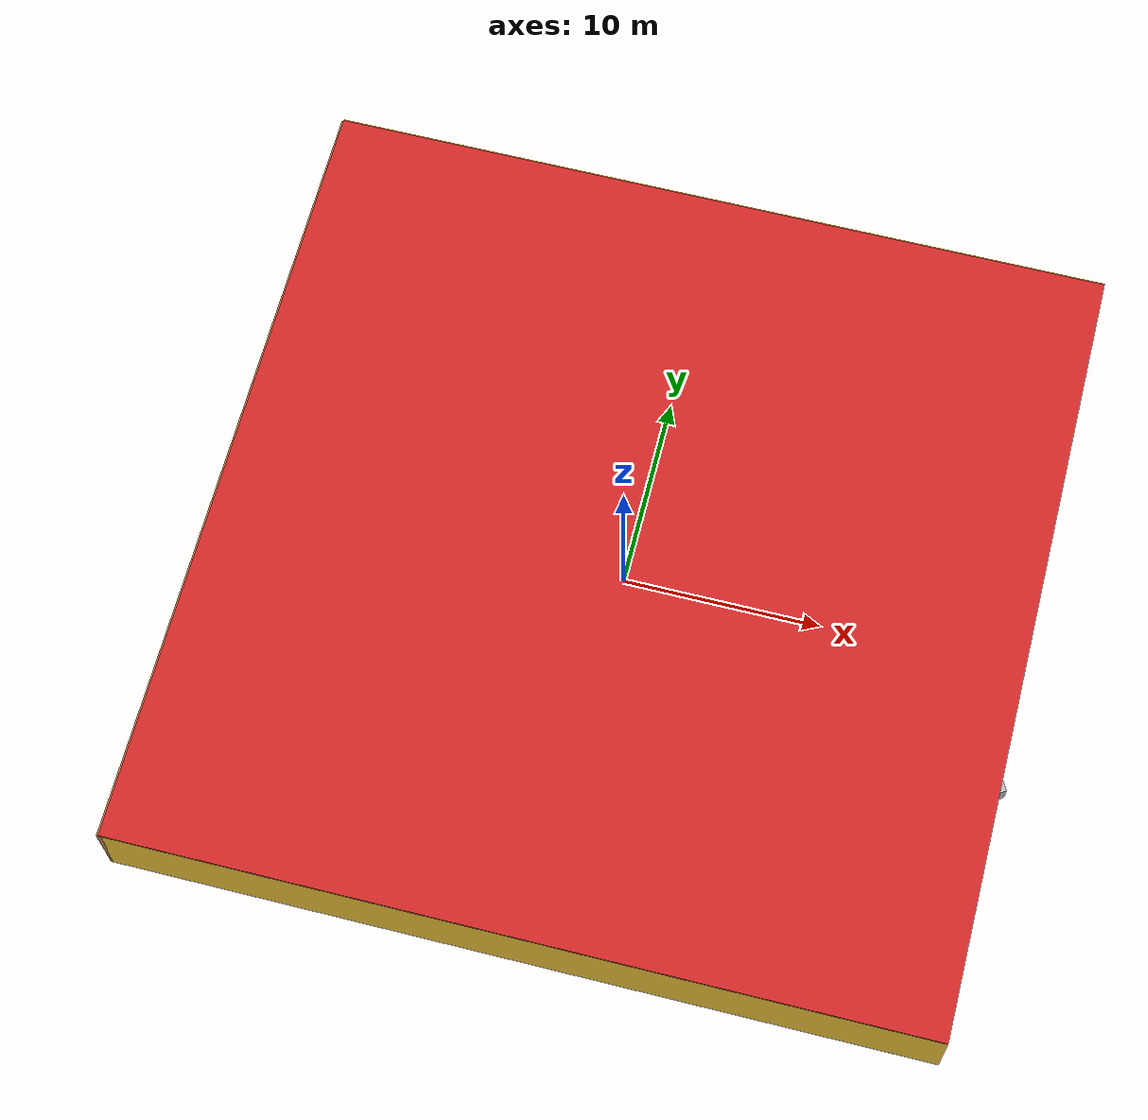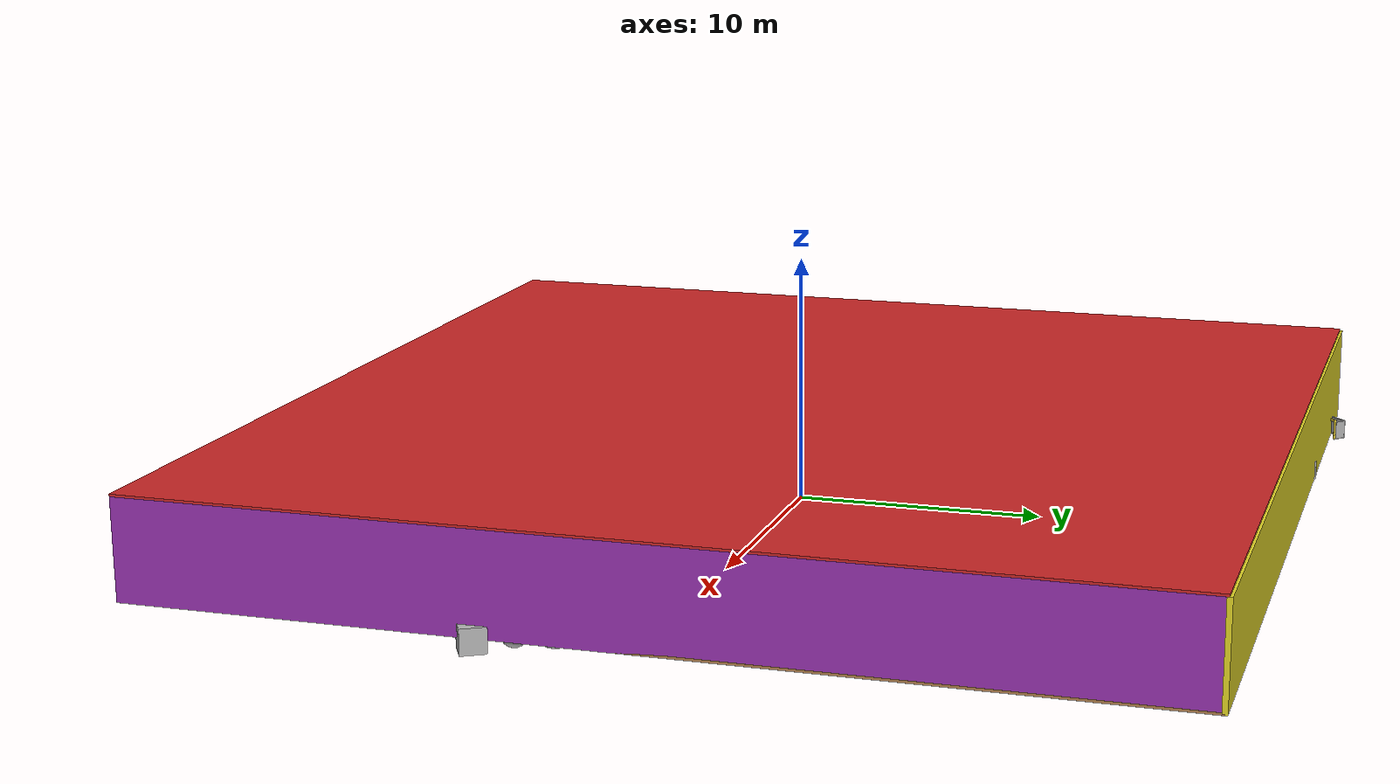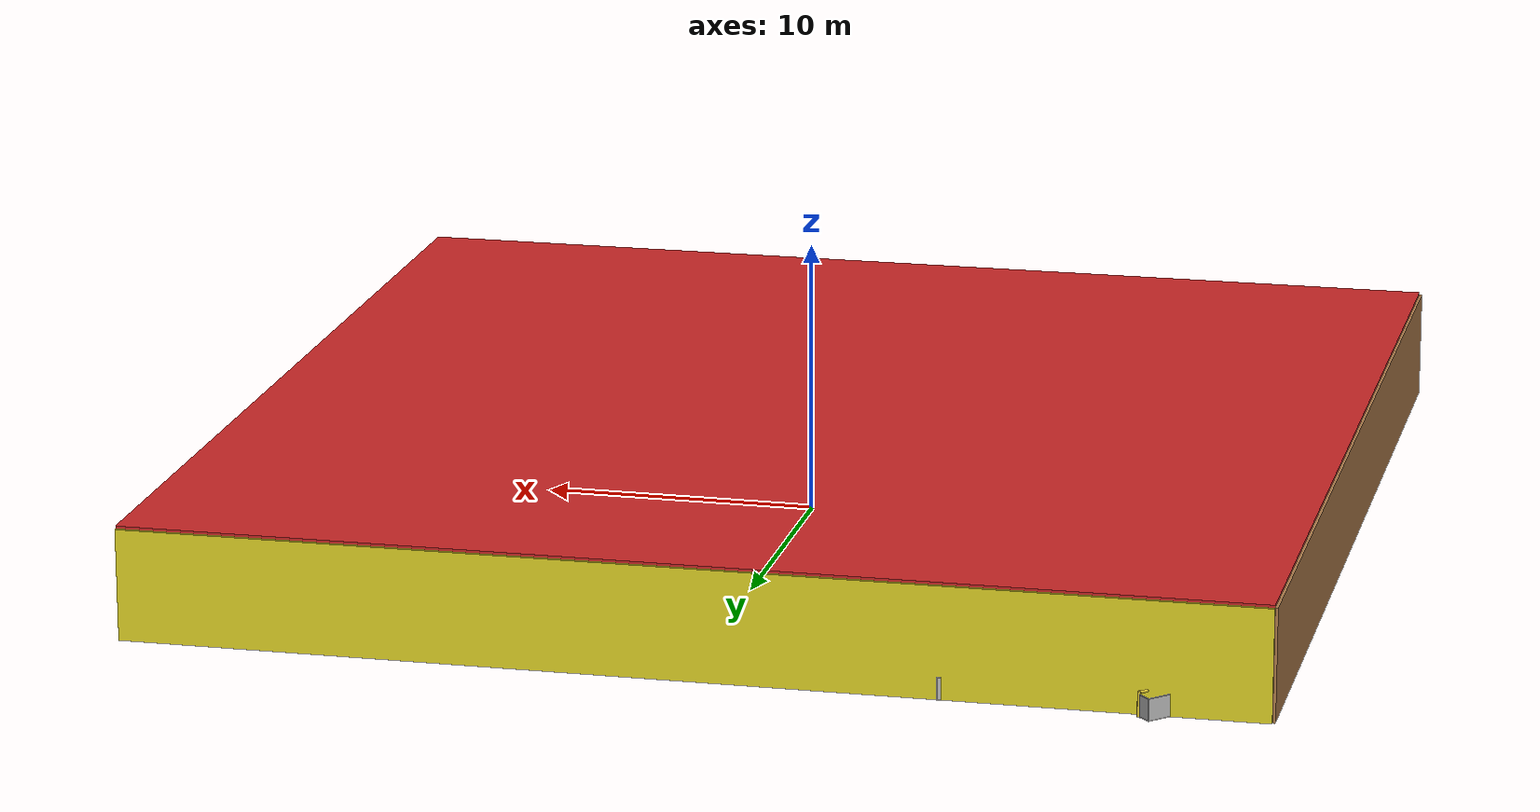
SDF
<sdf version="1.4">
 <world name="default">
  <physics type="ode">
   <max_step_size>0.001</max_step_size>
   <real_time_factor>1</real_time_factor>
   <real_time_update_rate>1000</real_time_update_rate>
   <gravity>0 0 -9.8</gravity>
  </physics>
  <scene><ambient>0.4 0.4 0.4 1</ambient><background>0.7 0.7 0.7 1</background><shadows>1</shadows></scene>
  <model name="Surrounding">
   <static>1</static>
   <link name="Ceiling">
    <collision name="Ceiling_Collision"><geometry><box><size>40 40 0.1</size></box></geometry></collision>
    <visual name="Ceiling_Visual">
     <geometry><box><size>40 40 0.1</size></box></geometry>
     <material>
      <script><uri>file://media/materials/scripts/gazebo.material</uri><name>Gazebo/Red</name></script>
     </material>
    </visual>
    <pose>0 0 4.05 0 0 0</pose>
   </link>
   <link name="Wall_South">
    <collision name="Wall_South_Collision">
     <geometry><box><size>40 0 4</size></box></geometry>
     <pose>0 0 2 0 -0 0</pose>
    </collision>
    <visual name="Wall_South_Visual">
     <pose>0 0 2 0 -0 0</pose>
     <geometry><box><size>40 0 4</size></box></geometry>
     <material>
      <script><uri>file://media/materials/scripts/gazebo.material</uri><name>Gazebo/Gold</name></script>
     </material>
    </visual>
    <velocity_decay><linear>0</linear><angular>0</angular></velocity_decay>
    <pose>0 -20 0 0 -0 0</pose>
   </link>
   <link name="Wall_East">
    <collision name="Wall_21_Collision">
     <geometry><box><size>40 0 4</size></box></geometry>
     <pose>0 0 2 0 -0 0</pose>
    </collision>
    <visual name="Wall_21_Visual">
     <pose>0 0 2 0 -0 0</pose>
     <geometry><box><size>40 0 4</size></box></geometry>
     <material>
      <script><uri>file://media/materials/scripts/gazebo.material</uri><name>Gazebo/PurpleGlow</name></script>
     </material>
    </visual>
    <velocity_decay><linear>0</linear><angular>0</angular></velocity_decay>
    <pose>20 0 0 0 -0 1.5708</pose>
   </link>
   <link name="Wall_North">
    <collision name="Wall_22_Collision">
     <geometry><box><size>40 0.2 4</size></box></geometry>
     <pose>0 0 2 0 -0 0</pose>
    </collision>
    <visual name="Wall_22_Visual">
     <pose>0 0 2 0 -0 0</pose>
     <geometry><box><size>40 0.2 4</size></box></geometry>
     <material>
      <script><uri>file://media/materials/scripts/gazebo.material</uri><name>Gazebo/YellowGlow</name></script>
     </material>
    </visual>
    <velocity_decay><linear>0</linear><angular>0</angular></velocity_decay>
    <pose>0 20 0 0 -0 0</pose>
   </link>
   <link name="Wall_West">
    <collision name="Wall_23_Collision">
     <geometry><box><size>40 0.2 4</size></box></geometry>
     <pose>0 0 2 0 -0 0</pose>
    </collision>
    <visual name="Wall_23_Visual">
     <pose>0 0 2 0 -0 0</pose>
     <geometry><box><size>40 0.2 4</size></box></geometry>
     <material>
      <script><uri>file://media/materials/scripts/gazebo.material</uri><name>Gazebo/Wood</name></script>
     </material>
    </visual>
    <velocity_decay><linear>0</linear><angular>0</angular></velocity_decay>
    <pose>-20 0 0 0 0 -1.5708</pose>
   </link>
   <link name="Ground_link">
    <collision name="collision">
     <pose>0 0 .05 0 -0 0</pose>
     <geometry><box><size>40 40 0.1</size></box></geometry>
    </collision>
    <visual name="visual">
     <pose>0 0 .05 0 -0 0</pose>
     <geometry><box><size>40 40 0.1</size></box></geometry>
     <material>
      <script><uri>file://media/materials/scripts/gazebo.material</uri><name>Gazebo/WoodPallet</name></script>
     </material>
    </visual>
   </link>
   <static>1</static>
  </model>
  <spherical_coordinates>
   <surface_model>EARTH_WGS84</surface_model>
   <latitude_deg>0</latitude_deg>
   <longitude_deg>0</longitude_deg>
   <elevation>0</elevation>
   <heading_deg>0</heading_deg>
  </spherical_coordinates>
  <light name="lightball_0" type="diffuse">
   <diffuse>0.8 0.8 0.8 1</diffuse>
   <specular>0.2 0.2 0.2 1</specular>
   <attenuation>
    <range>100</range>
    <constant>0.7</constant>
    <linear>0.01</linear>
    <quadratic>0.001</quadratic>
   </attenuation>
   <direction>-0.5 0.1 -0.9</direction>
   <pose>4.8426443701 -13.3532126608 2.39671307033 0 0 0</pose>
  </light>
  <light name="lightball_1" type="diffuse">
   <diffuse>0.8 0.8 0.8 1</diffuse>
   <specular>0.2 0.2 0.2 1</specular>
   <attenuation>
    <range>100</range>
    <constant>0.7</constant>
    <linear>0.01</linear>
    <quadratic>0.001</quadratic>
   </attenuation>
   <direction>-0.5 0.1 -0.9</direction>
   <pose>7.9949937265 19.4343741358 1.27264697948 0 0 0</pose>
  </light>
  <light name="lightball_2" type="diffuse">
   <diffuse>0.8 0.8 0.8 1</diffuse>
   <specular>0.2 0.2 0.2 1</specular>
   <attenuation>
    <range>100</range>
    <constant>0.7</constant>
    <linear>0.01</linear>
    <quadratic>0.001</quadratic>
   </attenuation>
   <direction>-0.5 0.1 -0.9</direction>
   <pose>2.4034907806 12.3019453166 1.60629786632 0 0 0</pose>
  </light>
  <light name="lightball_3" type="diffuse">
   <diffuse>0.8 0.8 0.8 1</diffuse>
   <specular>0.2 0.2 0.2 1</specular>
   <attenuation>
    <range>100</range>
    <constant>0.7</constant>
    <linear>0.01</linear>
    <quadratic>0.001</quadratic>
   </attenuation>
   <direction>-0.5 0.1 -0.9</direction>
   <pose>19.2205169106 -4.03759321718 1.56711295621 0 0 0</pose>
  </light>
  <light name="lightball_4" type="diffuse">
   <diffuse>0.8 0.8 0.8 1</diffuse>
   <specular>0.2 0.2 0.2 1</specular>
   <attenuation>
    <range>100</range>
    <constant>0.7</constant>
    <linear>0.01</linear>
    <quadratic>0.001</quadratic>
   </attenuation>
   <direction>-0.5 0.1 -0.9</direction>
   <pose>-2.75528991522 2.19881581413 2.77277678892 0 0 0</pose>
  </light>
  <light name="lightball_5" type="diffuse">
   <diffuse>0.8 0.8 0.8 1</diffuse>
   <specular>0.2 0.2 0.2 1</specular>
   <attenuation>
    <range>100</range>
    <constant>0.7</constant>
    <linear>0.01</linear>
    <quadratic>0.001</quadratic>
   </attenuation>
   <direction>-0.5 0.1 -0.9</direction>
   <pose>-12.3390879012 -5.90236628716 2.19144775749 0 0 0</pose>
  </light>
  <light name="lightball_6" type="diffuse">
   <diffuse>0.8 0.8 0.8 1</diffuse>
   <specular>0.2 0.2 0.2 1</specular>
   <attenuation>
    <range>100</range>
    <constant>0.7</constant>
    <linear>0.01</linear>
    <quadratic>0.001</quadratic>
   </attenuation>
   <direction>-0.5 0.1 -0.9</direction>
   <pose>18.3091150115 -17.3468017426 1.43627257739 0 0 0</pose>
  </light>
  <light name="lightball_7" type="diffuse">
   <diffuse>0.8 0.8 0.8 1</diffuse>
   <specular>0.2 0.2 0.2 1</specular>
   <attenuation>
    <range>100</range>
    <constant>0.7</constant>
    <linear>0.01</linear>
    <quadratic>0.001</quadratic>
   </attenuation>
   <direction>-0.5 0.1 -0.9</direction>
   <pose>-4.91683927514 1.55892384629 1.7929376106 0 0 0</pose>
  </light>
  <light name="lightball_8" type="diffuse">
   <diffuse>0.8 0.8 0.8 1</diffuse>
   <specular>0.2 0.2 0.2 1</specular>
   <attenuation>
    <range>100</range>
    <constant>0.7</constant>
    <linear>0.01</linear>
    <quadratic>0.001</quadratic>
   </attenuation>
   <direction>-0.5 0.1 -0.9</direction>
   <pose>19.9580423137 -4.86258843478 2.35467146796 0 0 0</pose>
  </light>
  <light name="lightball_9" type="diffuse">
   <diffuse>0.8 0.8 0.8 1</diffuse>
   <specular>0.2 0.2 0.2 1</specular>
   <attenuation>
    <range>100</range>
    <constant>0.7</constant>
    <linear>0.01</linear>
    <quadratic>0.001</quadratic>
   </attenuation>
   <direction>-0.5 0.1 -0.9</direction>
   <pose>-15.6021774358 12.8344488428 1.71478594719 0 0 0</pose>
  </light>
  <light name="lightball_10" type="diffuse">
   <diffuse>0.8 0.8 0.8 1</diffuse>
   <specular>0.2 0.2 0.2 1</specular>
   <attenuation>
    <range>100</range>
    <constant>0.7</constant>
    <linear>0.01</linear>
    <quadratic>0.001</quadratic>
   </attenuation>
   <direction>-0.5 0.1 -0.9</direction>
   <pose>14.3708370861 -14.2233456189 2.06864544865 0 0 0</pose>
  </light>
  <light name="lightball_11" type="diffuse">
   <diffuse>0.8 0.8 0.8 1</diffuse>
   <specular>0.2 0.2 0.2 1</specular>
   <attenuation>
    <range>100</range>
    <constant>0.7</constant>
    <linear>0.01</linear>
    <quadratic>0.001</quadratic>
   </attenuation>
   <direction>-0.5 0.1 -0.9</direction>
   <pose>-10.9095480899 11.9353432573 1.82333679301 0 0 0</pose>
  </light>
  <include>
   <uri>model://construction_cone</uri>
   <pose>-18.3327547316 3.90227252013 0 0 0 2.40701461284</pose>
  </include>
  <include>
   <uri>model://robocup_3Dsim_goal</uri>
   <pose>-16.3078126229 19.5835465796 0 0 0 2.36521477735</pose>
  </include>
  <include><uri>model://cabinet</uri><pose>-14.9850301641 3.66600102405 0 0 0 3.13589231129</pose></include>
  <include><uri>model://cabinet</uri><pose>-15.0508293357 11.7235503525 0 0 0 2.48002726144</pose></include>
  <include><uri>model://table</uri><pose>-12.5321790162 -12.2764327211 0 0 0 2.91623629306</pose></include>
  <include>
   <uri>model://textured_shapes</uri>
   <pose>-11.129885525 -1.57264796208 0 0 0 0.111595255081</pose>
  </include>
  <include><uri>model://table</uri><pose>-11.4118684193 0.43166086223 0 0 0 1.42477989332</pose></include>
  <include><uri>model://table</uri><pose>-12.0497953865 6.75502959149 0 0 0 1.4146481826</pose></include>
  <include><uri>model://table</uri><pose>-10.717206148 14.9646727141 0 0 0 2.42501509928</pose></include>
  <include>
   <uri>model://robocup_3Dsim_goal</uri>
   <pose>-8.89900229738 -6.16245111612 0 0 0 0.286391393978</pose>
  </include>
  <include>
   <uri>model://robocup_3Dsim_goal</uri>
   <pose>-8.14240394972 -3.55003329344 0 0 0 1.15784203015</pose>
  </include>
  <include>
   <uri>model://robocup_3Dsim_goal</uri>
   <pose>-9.43326402817 19.2033798501 0 0 0 2.00497796908</pose>
  </include>
  <include><uri>model://cabinet</uri><pose>-5.1444267658 0.320853353114 0 0 0 1.18215100366</pose></include>
  <include>
   <uri>model://construction_cone</uri>
   <pose>-4.36805131395 3.10624798289 0 0 0 1.61090656893</pose>
  </include>
  <include>
   <uri>model://construction_cone</uri>
   <pose>1.48749515131 -1.88038340085 0 0 0 0.317670394554</pose>
  </include>
  <include>
   <uri>model://construction_cone</uri>
   <pose>3.78847640267 -8.77246296828 0 0 0 2.10203871286</pose>
  </include>
  <include><uri>model://cabinet</uri><pose>7.69386049159 19.3209121893 0 0 0 2.99113101312</pose></include>
  <include><uri>model://table</uri><pose>8.4513653633 -14.3863645091 0 0 0 1.82810861429</pose></include>
  <include>
   <uri>model://robocup_3Dsim_goal</uri>
   <pose>8.4890521089 2.41800781969 0 0 0 1.39045226215</pose>
  </include>
  <include><uri>model://cabinet</uri><pose>12.9281912486 -1.78773152075 0 0 0 1.29984476194</pose></include>
  <include>
   <uri>model://robocup_3Dsim_goal</uri>
   <pose>16.6070976899 2.49655574323 0 0 0 1.70287664347</pose>
  </include>
  <include><uri>model://cabinet</uri><pose>14.6666536459 8.84560313022 0 0 0 1.73812085448</pose></include>
  <include>
   <uri>model://robocup_3Dsim_goal</uri>
   <pose>16.6877005659 18.7973373015 0 0 0 2.89056826289</pose>
  </include>
  <include>
   <uri>model://textured_shapes</uri>
   <pose>19.0747390056 -4.85947260165 0 0 0 0.524836108632</pose>
  </include>
  <include>
   <uri>model://construction_cone</uri>
   <pose>18.4223248732 6.33300632401 0 0 0 3.05094294648</pose>
  </include>
 </world>
</sdf>

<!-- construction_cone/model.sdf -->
<sdf version="1.5">
  <model name="Construction Cone">
    <link name="link">
      <collision name="collision">
        <geometry>
          <mesh>
            <scale>10 10 10</scale>
            <uri>file://isr-testbed/construction_cone/meshes/construction_cone.dae</uri>
          </mesh>
        </geometry>
      </collision>
      <visual name="visual">
        <geometry>
          <mesh>
            <scale>10 10 10</scale>
            <uri>file://isr-testbed/construction_cone/meshes/construction_cone.dae</uri>
          </mesh>
        </geometry>
      </visual>
    </link>
  </model>
</sdf>

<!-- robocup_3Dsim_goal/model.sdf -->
<sdf version="1.5">
  <model name="robocup_3d_goal">
    <static>true</static>
    <link name="left_post">
      <pose>0 1.05 0.45 0 0 0</pose>
      <collision name="collision">
        <geometry>
          <cylinder>
            <radius>0.05</radius>
            <length>0.9</length>
          </cylinder>
        </geometry>
      </collision>
      <visual name="visual">
        <geometry>
          <cylinder>
            <radius>0.05</radius>
            <length>0.9</length>
          </cylinder>
        </geometry>
        <material>
          <script>
            <uri>file://media/materials/scripts/gazebo.material</uri>
            <name>Gazebo/ZincYellow</name>
          </script>
        </material>
      </visual>
    </link>
    <link name="left_support_horiz_lower">
      <pose>0.30 1.05 0.01 0 0 0</pose>
      <collision name="collision">
        <geometry>
          <box>
            <size>0.50 0.02 0.02</size>
          </box>
        </geometry>
      </collision>
      <visual name="visual">
        <geometry>
          <box>
            <size>0.50 0.02 0.02</size>
          </box>
        </geometry>
        <material>
          <script>
            <uri>file://media/materials/scripts/gazebo.material</uri>
            <name>Gazebo/White</name>
          </script>
        </material>
      </visual>
    </link>
    <link name="left_support_horiz_upper">
      <pose>0.30 1.05 0.79 0 0 0</pose>
      <collision name="collision">
        <geometry>
          <box>
            <size>0.50 0.02 0.02</size>
          </box>
        </geometry>
      </collision>
      <visual name="visual">
        <geometry>
          <box>
            <size>0.50 0.02 0.02</size>
          </box>
        </geometry>
        <material>
          <script>
            <uri>file://media/materials/scripts/gazebo.material</uri>
            <name>Gazebo/White</name>
          </script>
        </material>
      </visual>
    </link>
    <link name="left_support_vertical">
      <pose>0.56 1.05 0.4 0 1.5708 0</pose>
      <collision name="collision">
        <geometry>
          <box>
            <size>0.80 0.02 0.02</size>
          </box>
        </geometry>
      </collision>
      <visual name="visual">
        <geometry>
          <box>
            <size>0.80 0.02 0.02</size>
          </box>
        </geometry>
        <material>
          <script>
            <uri>file://media/materials/scripts/gazebo.material</uri>
            <name>Gazebo/White</name>
          </script>
        </material>
      </visual>
    </link>
    <link name="right_support_horiz_lower">
      <pose>0.30 -1.05 0.01 0 0 0</pose>
      <collision name="collision">
        <geometry>
          <box>
            <size>0.50 0.02 0.02</size>
          </box>
        </geometry>
      </collision>
      <visual name="visual">
        <geometry>
          <box>
            <size>0.50 0.02 0.02</size>
          </box>
        </geometry>
        <material>
          <script>
            <uri>file://media/materials/scripts/gazebo.material</uri>
            <name>Gazebo/White</name>
          </script>
        </material>
      </visual>
    </link>
    <link name="right_support_horiz_upper">
      <pose>0.30 -1.05 0.79 0 0 0</pose>
      <collision name="collision">
        <geometry>
          <box>
            <size>0.50 0.02 0.02</size>
          </box>
        </geometry>
      </collision>
      <visual name="visual">
        <geometry>
          <box>
            <size>0.50 0.02 0.02</size>
          </box>
        </geometry>
        <material>
          <script>
            <uri>file://media/materials/scripts/gazebo.material</uri>
            <name>Gazebo/White</name>
          </script>
        </material>
      </visual>
    </link>
    <link name="right_support_vertical">
      <pose>0.56 -1.05 0.4 0 1.5708 0</pose>
      <collision name="collision">
        <geometry>
          <box>
            <size>0.80 0.02 0.02</size>
          </box>
        </geometry>
      </collision>
      <visual name="visual">
        <geometry>
          <box>
            <size>0.80 0.02 0.02</size>
          </box>
        </geometry>
        <material>
          <script>
            <uri>file://media/materials/scripts/gazebo.material</uri>
            <name>Gazebo/White</name>
          </script>
        </material>
      </visual>
    </link>
    <link name="center_support_horiz_lower">
      <pose>0.56 0 0.01 0 1.5708 0</pose>
      <collision name="collision">
        <geometry>
          <box>
            <size>0.02 2.08 0.02</size>
          </box>
        </geometry>
      </collision>
      <visual name="visual">
        <geometry>
          <box>
            <size>0.02 2.08 0.02</size>
          </box>
        </geometry>
        <material>
          <script>
            <uri>file://media/materials/scripts/gazebo.material</uri>
            <name>Gazebo/White</name>
          </script>
        </material>
      </visual>
    </link>
    <link name="center_support_horiz_upper">
      <pose>0.56 0 0.79 0 1.5708 0</pose>
      <collision name="collision">
        <geometry>
          <box>
            <size>0.02 2.08 0.02</size>
          </box>
        </geometry>
      </collision>
      <visual name="visual">
        <geometry>
          <box>
            <size>0.02 2.08 0.02</size>
          </box>
        </geometry>
        <material>
          <script>
            <uri>file://media/materials/scripts/gazebo.material</uri>
            <name>Gazebo/White</name>
          </script>
        </material>
      </visual>
    </link>
    <link name="right_post">
      <pose>0 -1.05 0.45 0 0 0</pose>
      <collision name="collision">
        <geometry>
          <cylinder>
            <radius>0.05</radius>
            <length>0.9</length>
          </cylinder>
        </geometry>
      </collision>
      <visual name="visual">
        <geometry>
          <cylinder>
            <radius>0.05</radius>
            <length>0.9</length>
          </cylinder>
        </geometry>
        <material>
          <script>
            <uri>file://media/materials/scripts/gazebo.material</uri>
            <name>Gazebo/ZincYellow</name>
          </script>
        </material>
      </visual>
    </link>
    <link name="crossbar">
      <pose>0 0 0.85 1.57 1.57 0</pose>
      <collision name="collision">
        <geometry>
          <cylinder>
            <radius>0.05</radius>
            <length>2.0</length>
          </cylinder>
        </geometry>
      </collision>
      <visual name="visual">
        <geometry>
          <cylinder>
            <radius>0.05</radius>
            <length>2.0</length>
          </cylinder>
        </geometry>
        <material>
          <script>
            <uri>file://media/materials/scripts/gazebo.material</uri>
            <name>Gazebo/ZincYellow</name>
          </script>
        </material>
      </visual>
    </link>
    <link name="center_net">
      <pose>0.56 0 0.40 0 0 0</pose>
      <collision name="collision">
        <geometry>
          <box>
            <size>0.01 2.1 0.80</size>
          </box>
        </geometry>
      </collision>
      <visual name="visual">
        <geometry>
          <box>
            <size>0.01 2.1 0.80</size>
          </box>
        </geometry>
        <material>
          <script>
            <uri>model://../model_source/models/robocup09_spl_field/materials/scripts/</uri>
            <uri>model://../model_source/models/robocup09_spl_field/materials/textures/</uri>
            <name>RoboCup/Net</name>
          </script>
        </material>
      </visual>
    </link>
    <link name="left_net">
      <pose>0.30 1.05 0.40 0 0 0</pose>
      <collision name="collision">
        <geometry>
          <box>
            <size>0.50 0.01 0.76</size>
          </box>
        </geometry>
      </collision>
      <visual name="visual">
        <geometry>
          <box>
            <size>0.50 0.01 0.76</size>
          </box>
        </geometry>
        <material>
          <script>
            <uri>model://../model_source/models/robocup09_spl_field/materials/scripts/</uri>
            <uri>model://../model_source/models/robocup09_spl_field/materials/textures/</uri>
            <name>RoboCup/Net</name>
          </script>
        </material>
      </visual>
    </link>
    <link name="right_net">
      <pose>0.30 -1.05 0.40 0 0 0</pose>
      <collision name="collision">
        <geometry>
          <box>
            <size>0.50 0.01 0.76</size>
          </box>
        </geometry>
      </collision>
      <visual name="visual">
        <geometry>
          <box>
            <size>0.50 0.01 0.76</size>
          </box>
        </geometry>
        <material>
          <script>
            <uri>model://../model_source/models/robocup09_spl_field/materials/scripts/</uri>
            <uri>model://../model_source/models/robocup09_spl_field/materials/textures/</uri>
            <name>RoboCup/Net</name>
          </script>
        </material>
      </visual>
    </link>
  </model>
</sdf>

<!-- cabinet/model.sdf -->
<sdf version="1.5">
  <model name="cabinet">
    <static>true</static>
    <link name="cabinet_bottom_plate">
      <inertial>
        <pose>0 0 -1 0 0 0</pose>
        <inertia>
          <ixx>2.050000</ixx>
          <ixy>0</ixy>
          <ixz>0</ixz>
          <iyy>2.050000</iyy>
          <iyz>0</iyz>
          <izz>2.050000</izz>
        </inertia>
        <mass>25.000000</mass>
      </inertial>
      <collision name="cabinet_bottom_plate_geom">
        <pose>0 0 0.010000 0 0 0</pose>
        <geometry>
          <box>
            <size>0.450000 0.450000 0.020000</size>
          </box>
        </geometry>
      </collision>
      <visual name="cabinet_bottom_plate_geom_visual">
        <pose>0 0 0.010000 0 0 0</pose>
        <geometry>
          <box>
            <size>0.450000 0.450000 0.020000</size>
          </box>
        </geometry>
        <material>
          <script>
            <uri>model://media/materials/scripts/gazebo.material</uri>
            <name>Gazebo/Wood</name>
          </script>
        </material>
      </visual>
      <collision name="cabinet_bottom_plate_geom_cabinet_back_plate">
        <pose>0.235000 0 0.510000 0 0 0</pose>
        <geometry>
          <box>
            <size>0.020000 0.450000 1.020000</size>
          </box>
        </geometry>
      </collision>
      <visual name="cabinet_bottom_plate_geom_cabinet_back_plate_visual">
        <pose>0.235000 0 0.510000 0 0 0</pose>
        <geometry>
          <box>
            <size>0.020000 0.450000 1.020000</size>
          </box>
        </geometry>
        <material>
          <script>
            <uri>model://media/materials/scripts/gazebo.material</uri>
            <name>Gazebo/Wood</name>
          </script>
        </material>
      </visual>
      <collision name="cabinet_bottom_plate_geom_cabinet_left_plate">
        <pose>0 0.235000 0.510000 0 0 0</pose>
        <geometry>
          <box>
            <size>0.450000 0.020000 1.020000</size>
          </box>
        </geometry>
      </collision>
      <visual name="cabinet_bottom_plate_geom_cabinet_left_plate_visual">
        <pose>0 0.235000 0.510000 0 0 0</pose>
        <geometry>
          <box>
            <size>0.450000 0.020000 1.020000</size>
          </box>
        </geometry>
        <material>
          <script>
            <uri>model://media/materials/scripts/gazebo.material</uri>
            <name>Gazebo/Wood</name>
          </script>
        </material>
      </visual>
      <collision name="cabinet_bottom_plate_geom_cabinet_middle_plate">
        <pose>0 0 0.510000 0 0 0</pose>
        <geometry>
          <box>
            <size>0.450000 0.450000 0.020000</size>
          </box>
        </geometry>
      </collision>
      <visual name="cabinet_bottom_plate_geom_cabinet_middle_plate_visual">
        <pose>0 0 0.510000 0 0 0</pose>
        <geometry>
          <box>
            <size>0.450000 0.450000 0.020000</size>
          </box>
        </geometry>
        <material>
          <script>
            <uri>model://media/materials/scripts/gazebo.material</uri>
            <name>Gazebo/Wood</name>
          </script>
        </material>
      </visual>
      <collision name="cabinet_bottom_plate_geom_cabinet_right_plate">
        <pose>0 -0.235000 0.510000 0 0 0</pose>
        <geometry>
          <box>
            <size>0.450000 0.020000 1.020000</size>
          </box>
        </geometry>
      </collision>
      <visual name="cabinet_bottom_plate_geom_cabinet_right_plate_visual">
        <pose>0 -0.235000 0.510000 0 0 0</pose>
        <geometry>
          <box>
            <size>0.450000 0.020000 1.020000</size>
          </box>
        </geometry>
        <material>
          <script>
            <uri>model://media/materials/scripts/gazebo.material</uri>
            <name>Gazebo/Wood</name>
          </script>
        </material>
      </visual>
      <collision name="cabinet_bottom_plate_geom_cabinet_top_plate">
        <pose>0 0 1.010000 0 0 0</pose>
        <geometry>
          <box>
            <size>0.450000 0.450000 0.020000</size>
          </box>
        </geometry>
      </collision>
      <visual name="cabinet_bottom_plate_geom_cabinet_top_plate_visual">
        <pose>0 0 1.010000 0 0 0</pose>
        <geometry>
          <box>
            <size>0.450000 0.450000 0.020000</size>
          </box>
        </geometry>
        <material>
          <script>
            <uri>model://media/materials/scripts/gazebo.material</uri>
            <name>Gazebo/Wood</name>
          </script>
        </material>
      </visual>
    </link>
  </model>
</sdf>

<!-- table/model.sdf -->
<sdf version="1.5">
  <model name="table">
    <static>true</static>
    <link name="link">
      <collision name="surface">
        <pose>0 0 1.0 0 0 0</pose>
        <geometry>
          <box>
            <size>1.5 0.8 0.03</size>
          </box>
        </geometry>
        <surface>
          <friction>
            <ode>
              <mu>0.6</mu>
              <mu2>0.6</mu2>
            </ode>
          </friction>
        </surface>
      </collision>
      <visual name="visual1">
        <pose>0 0 1.0 0 0 0</pose>
        <geometry>
          <box>
            <size>1.5 0.8 0.03</size>
          </box>
        </geometry>
        <material>
          <script>
            <uri>model://media/materials/scripts/gazebo.material</uri>
            <name>Gazebo/Wood</name>
          </script>
        </material>
      </visual>
      <collision name="front_left_leg">
        <pose>0.68 0.38 0.5 0 0 0</pose>
        <geometry>
          <cylinder>
            <radius>0.02</radius>
            <length>1.0</length>
          </cylinder>
        </geometry>
      </collision>
      <visual name="front_left_leg">
        <pose>0.68 0.38 0.5 0 0 0</pose>
        <geometry>
          <cylinder>
            <radius>0.02</radius>
            <length>1.0</length>
          </cylinder>
        </geometry>
        <material>
          <script>
            <uri>model://media/materials/scripts/gazebo.material</uri>
            <name>Gazebo/Grey</name>
          </script>
        </material>
      </visual>
      <collision name="front_right_leg">
        <pose>0.68 -0.38 0.5 0 0 0</pose>
        <geometry>
          <cylinder>
            <radius>0.02</radius>
            <length>1.0</length>
          </cylinder>
        </geometry>
      </collision>
      <visual name="front_right_leg">
        <pose>0.68 -0.38 0.5 0 0 0</pose>
        <geometry>
          <cylinder>
            <radius>0.02</radius>
            <length>1.0</length>
          </cylinder>
        </geometry>
        <material>
          <script>
            <uri>model://media/materials/scripts/gazebo.material</uri>
            <name>Gazebo/Grey</name>
          </script>
        </material>
      </visual>
      <collision name="back_right_leg">
        <pose>-0.68 -0.38 0.5 0 0 0</pose>
        <geometry>
          <cylinder>
            <radius>0.02</radius>
            <length>1.0</length>
          </cylinder>
        </geometry>
      </collision>
      <visual name="back_right_leg">
        <pose>-0.68 -0.38 0.5 0 0 0</pose>
        <geometry>
          <cylinder>
            <radius>0.02</radius>
            <length>1.0</length>
          </cylinder>
        </geometry>
        <material>
          <script>
            <uri>model://media/materials/scripts/gazebo.material</uri>
            <name>Gazebo/Grey</name>
          </script>
        </material>
      </visual>
      <collision name="back_left_leg">
        <pose>-0.68 0.38 0.5 0 0 0</pose>
        <geometry>
          <cylinder>
            <radius>0.02</radius>
            <length>1.0</length>
          </cylinder>
        </geometry>
      </collision>
      <visual name="back_left_leg">
        <pose>-0.68 0.38 0.5 0 0 0</pose>
        <geometry>
          <cylinder>
            <radius>0.02</radius>
            <length>1.0</length>
          </cylinder>
        </geometry>
        <material>
          <script>
            <uri>model://media/materials/scripts/gazebo.material</uri>
            <name>Gazebo/Grey</name>
          </script>
        </material>
      </visual>
    </link>
  </model>
</sdf>

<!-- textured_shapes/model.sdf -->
<sdf version="1.6">
  <model name="textured_shapes">
    <pose>0 0 0.5 0 0 0</pose>
    <link name="box">
      <pose>0 -1.5 0 0 0 0</pose>
      <collision name="collision">
        <geometry>
          <box>
            <size>1 1 1</size>
          </box>
        </geometry>
      </collision>
      <visual name="visual">
        <geometry>
          <box>
            <size>1 1 1</size>
          </box>
        </geometry>
        <material>
          <script>
            <uri>model://../model_source/models/textured_shapes/materials/scripts</uri>
            <uri>model://../model_source/models/textured_shapes/materials/textures</uri>
            <name>TexturedShape/Squares</name>
          </script>
        </material>
      </visual>
    </link>
    <link name="sphere">
      <collision name="collision">
        <geometry>
          <sphere>
            <radius>0.5</radius>
          </sphere>
        </geometry>
      </collision>
      <visual name="visual">
        <geometry>
          <sphere>
            <radius>0.5</radius>
          </sphere>
        </geometry>
        <material>
          <script>
            <uri>model://../model_source/models/textured_shapes/materials/scripts</uri>
            <uri>model://../model_source/models/textured_shapes/materials/textures</uri>
            <name>TexturedShape/Squares</name>
          </script>
        </material>
      </visual>
    </link>
    <link name="cylinder">
      <pose>0 1.5 0 0 0 0</pose>
      <collision name="collision">
        <geometry>
          <cylinder>
            <radius>0.5</radius>
            <length>1</length>
          </cylinder>
        </geometry>
      </collision>
      <visual name="visual">
        <geometry>
          <cylinder>
            <radius>0.5</radius>
            <length>1</length>
          </cylinder>
        </geometry>
        <material>
          <script>
            <uri>model://../model_source/models/textured_shapes/materials/scripts</uri>
            <uri>model://../model_source/models/textured_shapes/materials/textures</uri>
            <name>TexturedShape/Squares</name>
          </script>
        </material>
      </visual>
    </link>
  </model>
</sdf>
